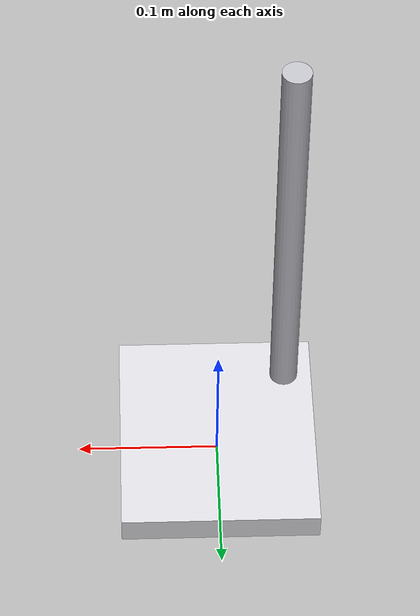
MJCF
<?xml version="1.0" encoding="utf-8"?>
<mujoco model="texture_analyzer">
  <compiler angle="radian" autolimits="true"/>
  <default>
    <default class="body"><geom contype="1" conaffinity="1"/></default>
  </default>
  <worldbody>
    <body name="base">
      <geom type="box" size="0.07 0.08 0.01" pos="0 0 0.01" rgba="0.85 0.85 0.87 1" class="body"/>
      <geom type="cylinder" size="0.01 0.16" pos="-0.05 -0.05 0.17" rgba="0.75 0.75 0.78 1" class="body"/>
      <body name="probe" pos="-0.05 -0.05 0.26">
        <joint name="probe_joint" type="slide" axis="0 0 1" range="-0.06 0" damping="1.0" frictionloss="0.3"/>
  <geom type="cylinder" size="0.008 0.05" pos="0 0 0" rgba="0.2 0.2 0.2 1" class="body"/>
      </body>
    </body>
  </worldbody>
</mujoco>
